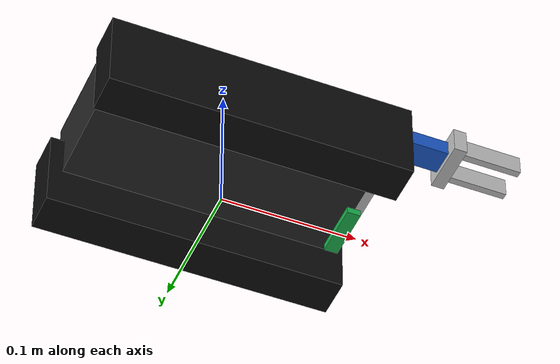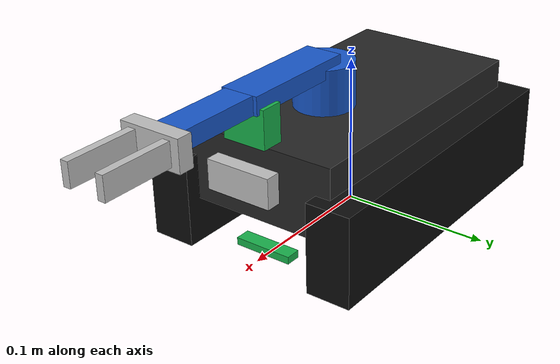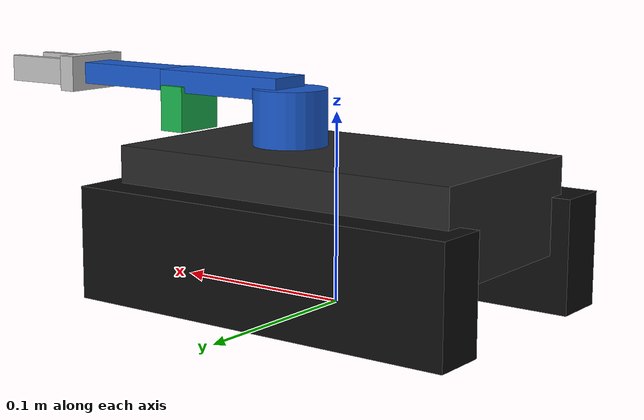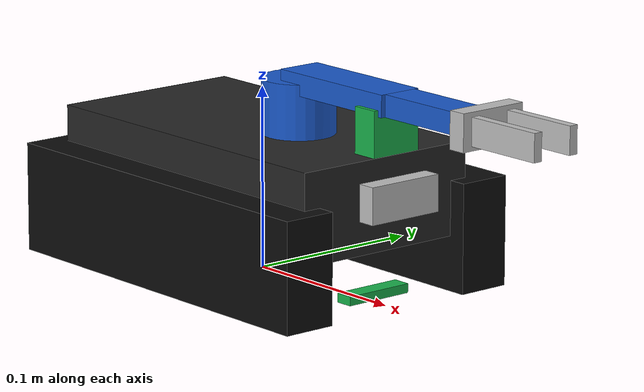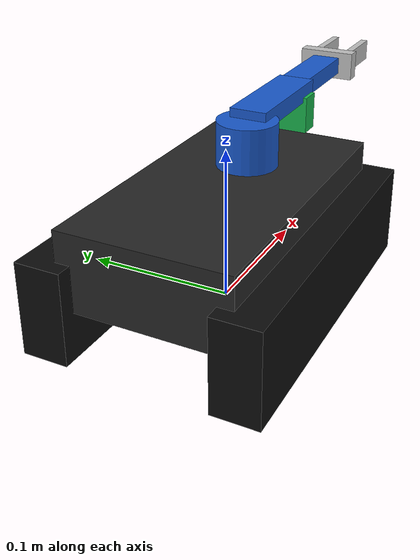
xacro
<?xml version="1.0"?>
<robot name="rasptank" xmlns:xacro="http://www.ros.org/wiki/xacro">

  <!-- chasis y orugas -->
  <xacro:property name="base_height" value="0.035"/>      <!-- base_link sobre el suelo -->
  <xacro:property name="chassis_length" value="0.20"/>
  <xacro:property name="chassis_width" value="0.11"/>
  <xacro:property name="track_separation" value="0.12"/>  <!-- entre centros de oruga -->
  <!-- brazo -->
  <xacro:property name="shoulder_x" value="0.03"/>
  <xacro:property name="shoulder_z" value="0.075"/>       <!-- sobre base_link -->
  <xacro:property name="upper_arm" value="0.08"/>
  <xacro:property name="forearm" value="0.06"/>
  <xacro:property name="gripper_center" value="0.04"/>    <!-- forearm + esto = reach -->
  <!-- camara -->
  <xacro:property name="camera_x" value="0.10"/>
  <xacro:property name="camera_z" value="0.06"/>
  <xacro:property name="servo_limit" value="1.5708"/>

  <material name="chasis"><color rgba="0.15 0.15 0.15 1"/></material>
  <material name="oruga"><color rgba="0.05 0.05 0.05 1"/></material>
  <material name="azul"><color rgba="0.1 0.35 0.8 1"/></material>
  <material name="plata"><color rgba="0.75 0.75 0.75 1"/></material>
  <material name="verde"><color rgba="0.1 0.7 0.3 1"/></material>

  <link name="base_footprint"/>

  <link name="base_link">
    <visual>
      <origin xyz="0 0 0.02"/>
      <geometry><box size="${chassis_length} ${chassis_width} 0.05"/></geometry>
      <material name="chasis"/>
    </visual>
  </link>
  <joint name="base_joint" type="fixed">
    <parent link="base_footprint"/>
    <child link="base_link"/>
    <origin xyz="0 0 ${base_height}"/>
  </joint>

  <xacro:macro name="track" params="side y">
    <link name="${side}_track_link">
      <visual>
        <geometry><box size="0.22 0.03 0.06"/></geometry>
        <material name="oruga"/>
      </visual>
    </link>
    <joint name="${side}_track_joint" type="fixed">
      <parent link="base_link"/>
      <child link="${side}_track_link"/>
      <origin xyz="0 ${y} -0.005"/>
    </joint>
  </xacro:macro>
  <xacro:track side="left" y="${track_separation / 2}"/>
  <xacro:track side="right" y="${-track_separation / 2}"/>

  <!-- brazo: servos A (hombro), B (codo), C (giro de pinza), D (pinza) -->
  <link name="arm_base_link">
    <visual>
      <origin xyz="0 0 -0.02"/>
      <geometry><cylinder radius="0.02" length="0.04"/></geometry>
      <material name="azul"/>
    </visual>
  </link>
  <joint name="arm_base_joint" type="fixed">
    <parent link="base_link"/>
    <child link="arm_base_link"/>
    <origin xyz="${shoulder_x} 0 ${shoulder_z}"/>
  </joint>

  <link name="upper_arm_link">
    <visual>
      <origin xyz="${upper_arm / 2} 0 0"/>
      <geometry><box size="${upper_arm} 0.025 0.012"/></geometry>
      <material name="azul"/>
    </visual>
  </link>
  <joint name="shoulder_joint" type="revolute">
    <parent link="arm_base_link"/>
    <child link="upper_arm_link"/>
    <axis xyz="0 -1 0"/>   <!-- positivo = arriba -->
    <limit lower="${-servo_limit}" upper="${servo_limit}" effort="1" velocity="2"/>
  </joint>

  <link name="forearm_link">
    <visual>
      <origin xyz="${forearm / 2} 0 0"/>
      <geometry><box size="${forearm} 0.02 0.012"/></geometry>
      <material name="azul"/>
    </visual>
  </link>
  <joint name="elbow_joint" type="revolute">
    <parent link="upper_arm_link"/>
    <child link="forearm_link"/>
    <origin xyz="${upper_arm} 0 0"/>
    <axis xyz="0 -1 0"/>
    <limit lower="${-servo_limit}" upper="${servo_limit}" effort="1" velocity="2"/>
  </joint>

  <link name="gripper_base_link">
    <visual>
      <origin xyz="0.005 0 0"/>
      <geometry><box size="0.01 0.04 0.02"/></geometry>
      <material name="plata"/>
    </visual>
  </link>
  <joint name="wrist_roll_joint" type="revolute">
    <parent link="forearm_link"/>
    <child link="gripper_base_link"/>
    <origin xyz="${forearm} 0 0"/>
    <axis xyz="1 0 0"/>
    <limit lower="${-servo_limit}" upper="${servo_limit}" effort="1" velocity="2"/>
  </joint>

  <!-- dedos: gripper_joint 0 = cerrada, positivo = abierta -->
  <link name="left_finger_link">
    <visual>
      <origin xyz="0.0225 0 0"/>
      <geometry><box size="0.045 0.005 0.015"/></geometry>
      <material name="plata"/>
    </visual>
  </link>
  <joint name="gripper_joint" type="revolute">
    <parent link="gripper_base_link"/>
    <child link="left_finger_link"/>
    <origin xyz="0.01 0.012 0"/>
    <axis xyz="0 0 1"/>
    <limit lower="${-servo_limit}" upper="${servo_limit}" effort="1" velocity="2"/>
  </joint>
  <link name="right_finger_link">
    <visual>
      <origin xyz="0.0225 0 0"/>
      <geometry><box size="0.045 0.005 0.015"/></geometry>
      <material name="plata"/>
    </visual>
  </link>
  <joint name="right_finger_joint" type="revolute">
    <parent link="gripper_base_link"/>
    <child link="right_finger_link"/>
    <origin xyz="0.01 -0.012 0"/>
    <axis xyz="0 0 1"/>
    <limit lower="${-servo_limit}" upper="${servo_limit}" effort="1" velocity="2"/>
    <mimic joint="gripper_joint" multiplier="-1"/>
  </joint>

  <!-- punto entre los dedos: donde queda el cubo agarrado -->
  <link name="gripper_center_link"/>
  <joint name="gripper_center_joint" type="fixed">
    <parent link="gripper_base_link"/>
    <child link="gripper_center_link"/>
    <origin xyz="${gripper_center} 0 0"/>
  </joint>

  <!-- camara con servo de inclinacion (E): positivo = mirar hacia abajo -->
  <link name="camera_link">
    <visual>
      <geometry><box size="0.015 0.03 0.025"/></geometry>
      <material name="verde"/>
    </visual>
  </link>
  <joint name="camera_tilt_joint" type="revolute">
    <parent link="base_link"/>
    <child link="camera_link"/>
    <origin xyz="${camera_x} 0 ${camera_z}"/>
    <axis xyz="0 1 0"/>
    <limit lower="${-servo_limit}" upper="${servo_limit}" effort="1" velocity="2"/>
  </joint>
  <!-- convenio de las camaras: z adelante, x derecha, y abajo -->
  <link name="camera_optical_frame"/>
  <joint name="camera_optical_joint" type="fixed">
    <parent link="camera_link"/>
    <child link="camera_optical_frame"/>
    <origin rpy="${-pi / 2} 0 ${-pi / 2}"/>
  </joint>

  <!-- ultrasonido HC-SR04 en el frontal -->
  <link name="ultrasonic_link">
    <visual>
      <geometry><box size="0.01 0.045 0.02"/></geometry>
      <material name="plata"/>
    </visual>
  </link>
  <joint name="ultrasonic_joint" type="fixed">
    <parent link="base_link"/>
    <child link="ultrasonic_link"/>
    <origin xyz="0.11 0 0.025"/>
  </joint>

  <!-- tres sensores de linea bajo el frontal (centro = el del medio) -->
  <link name="line_sensor_link">
    <visual>
      <geometry><box size="0.01 0.04 0.005"/></geometry>
      <material name="verde"/>
    </visual>
  </link>
  <joint name="line_sensor_joint" type="fixed">
    <parent link="base_link"/>
    <child link="line_sensor_link"/>
    <origin xyz="0.09 0 -0.03"/>
  </joint>
</robot>
